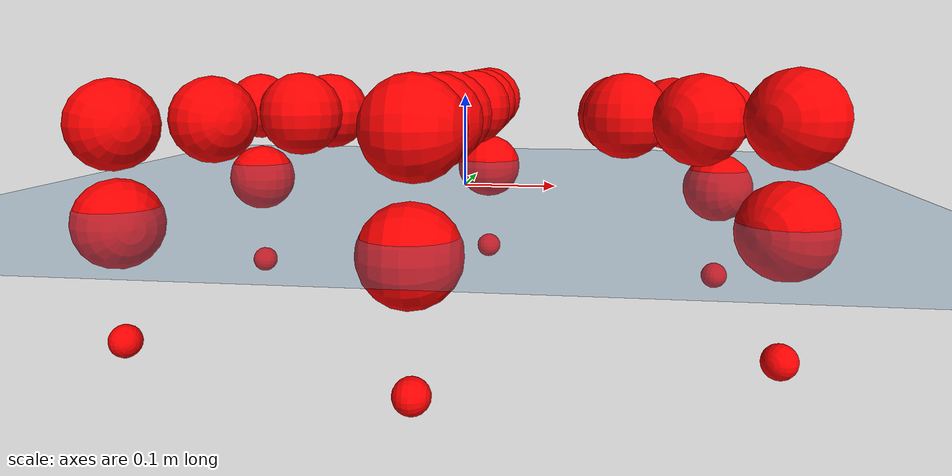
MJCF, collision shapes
<mujoco model="Golem">
  <compiler angle="radian" assetdir="assets" balanceinertia="true" inertiafromgeom="false"/>

  <option timestep="0.005" density="1.2" viscosity="2e-05"/>

  <size nkey="1"/>

  <visual>
    <quality shadowsize="8192"/>
    <map shadowclip="0.5"/>
  </visual>

  <default>
    <default class="/">
      <joint armature="0.01" damping="0.01" frictionloss="0.01"/>
      <geom contype="0" conaffinity="0" group="1" solref="-1000 -80"/>
      <site size="0.01 0.005 0.005" group="5"/>
      <general forcelimited="true" biastype="affine" gainprm="25" biasprm="0 -25 -0.5"/>
      <default class="visual">
        <geom type="mesh" group="2"/>
      </default>
      <default class="collision">
        <geom group="3"/>
      </default>
      <default class="foot">
        <geom size="0.01 0 0" condim="6" group="4" priority="1" solimp="0.015 1 0.01"/>
      </default>
      <default class="reward_collision_sphere">
        <geom group="5" rgba="1 0 0 1"/>
      </default>
    </default>
  </default>

  <asset>
    <texture type="skybox" colorspace="auto" name="//unnamed_texture_0" builtin="gradient" rgb1="0.95 0.95 0.95" rgb2="0.95 0.95 0.95" width="100" height="600"/>
    <texture type="2d" colorspace="auto" name="texplane" builtin="checker" rgb1="0.345 0.575 0.748" rgb2="0.345 0.575 0.748" markrgb="1 1 1" width="512" height="512"/>
    <material name="MatPlane" class="/" texture="texplane" texuniform="true" texrepeat="2 2" specular="0.9"/>
    <mesh name="body" class="/" file="body.stl" scale="0.001 0.001 0.001"/>
    <mesh name="coxa" class="/" file="coxa.stl" scale="0.001 0.001 0.001"/>
    <mesh name="femur" class="/" file="femur.stl" scale="0.001 0.001 0.001"/>
    <mesh name="tibia" class="/" file="tibia.stl" scale="0.001 0.001 0.001"/>
    <mesh name="tarsus" class="/" file="tarsus.stl" scale="0.001 0.001 0.001"/>
  </asset>

  <worldbody>
    <geom name="floor" class="/" size="100 100 0.125" type="plane" group="0" material="MatPlane"/>
    <light name="toplight_shadow" class="/" pos="0 0 5" dir="0.0990148 0.0990148 -0.990148" type="directional" ambient="0.04 0.04 0.04" diffuse="0.55 0.55 0.55" specular="0.12 0.12 0.12"/>
    <light name="toplight_fill" class="/" pos="0 0 5" dir="0.0990148 0.0990148 -0.990148" type="directional" castshadow="false" ambient="0.04 0.04 0.04" diffuse="0.3 0.3 0.3" specular="0.08 0.08 0.08"/>
    <body name="trunk" pos="9.365e-05 -0.00238572 0.000208137" quat="1 -0.000296317 -0.000352168 0.000802426">
      <inertial pos="0.00204709 -0.0019305 -0.00231292" quat="0.999937 0.0105246 0.00280835 -0.00254618" mass="5.03381" diaginertia="0.0146285 0.00650399 0.0356791"/>
      <joint name="//unnamed_joint_0" type="free"/>
      <geom name="//unnamed_geom_1" class="/" pos="0 0 0.0825573" quat="1 0 0 0" type="mesh" rgba="0.9 0.9 0.9 1" mesh="body"/>
      <site name="imu" class="/" pos="0.129278 -0.0108902 0.104955" size="0.0110081"/>
      <camera name="track" class="/" pos="0 -1.84589 0" quat="0.707107 0.707107 0 0" mode="trackcom"/>
      <camera name="ego_camera" class="/" pos="0.141637 0 0.128996" quat="-0.5 -0.5 0.5 0.5"/>
      <body name="coxa_RR" pos="-0.193691 -0.0775218 0.0814178" quat="0.384927 0.000517755 0.000663517 -0.922946">
        <inertial pos="-0.00127166 0.00226276 -0.000484896" quat="0.999969 0.00316687 0.00129155 0.00708207" mass="0.250101" diaginertia="0.0144347 0.00623491 0.0321926"/>
        <joint name="coxa_joint_RR" class="/" pos="0 0 0" axis="0.00150676 0.00556109 -0.999983" stiffness="0.00583238" range="-3.10611 3.09201" armature="0.012491" damping="0" frictionloss="0.0120961"/>
        <geom name="//unnamed_geom_2" class="/" type="mesh" rgba="0.2 0.2 0.2 1" mesh="coxa"/>
        <geom name="//unnamed_geom_3" class="reward_collision_sphere" size="0.0440322" pos="-0.0326854 0 0"/>
        <body name="femur_RR" pos="0.0648685 -0.00108632 -0.00249114" quat="0.49923 -0.499875 0.501632 0.49926">
          <inertial pos="0.000212429 -0.00452113 0.000774803" quat="1 2.75124e-05 -0.000241422 8.61986e-06" mass="0.280703" diaginertia="0.0159509 0.00681549 0.0369288"/>
          <joint name="femur_joint_RR" class="/" pos="0 0 0" axis="-0.00546924 0.00731547 -0.999958" range="-3.09493 3.09454" armature="0.00981379" damping="0.0210247" frictionloss="0.0112225"/>
          <geom name="//unnamed_geom_4" class="/" type="mesh" rgba="0.9 0.9 0.9 1" mesh="femur"/>
          <geom name="//unnamed_geom_5" class="reward_collision_sphere" size="0.0440322"/>
          <body name="tibia_RR" pos="0.000689337 -0.0986854 0.00138968" quat="2.50978e-05 1 -0.000149283 0.000214955">
            <inertial pos="0.00114122 -0.00372076 0.00240828" quat="1 -0.000760635 0.000431574 0.000318451" mass="0.268669" diaginertia="0.0153721 0.00679214 0.0354458"/>
            <joint name="tibia_joint_RR" class="/" pos="0 0 0" axis="0.0131639 0.00960848 0.999867" stiffness="0.0104719" range="-3.21426 3.18676" armature="0.0106682" damping="0.0252733" frictionloss="0.00803601"/>
            <geom name="//unnamed_geom_6" class="/" type="mesh" rgba="0.2 0.2 0.2 1" mesh="tibia"/>
            <geom name="//unnamed_geom_7" class="reward_collision_sphere" size="0.0440322"/>
            <body name="tarsus_RR" pos="0.0951963 -0.00138249 0.0041653" quat="1 0.000279316 -5.51893e-05 0.000256089">
              <inertial pos="0.0671267 -0.00212338 -0.000742322" quat="0.496016 0.503326 0.501636 0.49899" mass="0.276845" diaginertia="0.0163886 0.00673049 0.0345451"/>
              <joint name="tarsus_joint_RR" class="/" pos="0 0 0" axis="-0.000456853 -0.000561938 1" stiffness="0.00714983" range="-3.15216 3.10746" armature="0.00982307" damping="0" frictionloss="0.0121762"/>
              <geom name="//unnamed_geom_8" class="/" type="mesh" rgba="0.9 0.9 0.9 1" mesh="tarsus"/>
              <geom name="foot_1" class="foot" size="0.0119689" pos="0.122025 0 0" quat="0 -0.707107 0 0.707107"/>
              <geom name="//unnamed_geom_10" class="reward_collision_sphere" size="0.0440322"/>
              <geom name="//unnamed_geom_11" class="reward_collision_sphere" size="0.0165121" pos="0.117123 0 0"/>
              <site name="foot_1" class="foot" pos="0.122025 0 0" quat="0 -0.707107 0 0.707107" size="0.0110081"/>
            </body>
          </body>
        </body>
      </body>
      <body name="coxa_RM" pos="-0.00503754 -0.118869 0.0835453" quat="0.707642 0.000180422 0.000866853 -0.70657">
        <inertial pos="0.00162086 -0.000355481 0.00232949" quat="0.999716 0.00454365 0.0229955 0.00419334" mass="0.247087" diaginertia="0.0146023 0.00598232 0.0329471"/>
        <joint name="coxa_joint_RM" class="/" pos="0 0 0" axis="-0.0207747 -0.00546807 -0.999769" range="-3.14928 3.12197" armature="0.0096491" damping="0.0286561" frictionloss="0.010834"/>
        <geom name="//unnamed_geom_12" class="/" type="mesh" rgba="0.2 0.2 0.2 1" mesh="coxa"/>
        <geom name="//unnamed_geom_13" class="reward_collision_sphere" size="0.0440322" pos="-0.0326854 0 0"/>
        <body name="femur_RM" pos="0.0691386 0.00241261 -9.43748e-05" quat="0.50015 -0.499886 0.499236 0.500726">
          <inertial pos="-0.000109031 -0.000952832 -0.000789243" quat="0.99993 -0.0112359 0.00372711 0.000860318" mass="0.26653" diaginertia="0.015656 0.00661024 0.0348556"/>
          <joint name="femur_joint_RM" class="/" pos="0 0 0" axis="5.04613e-05 0.000276858 -1" stiffness="0.0125742" range="-3.17773 3.1602" armature="0.0105032" damping="0.0131608" frictionloss="0.00938167"/>
          <geom name="//unnamed_geom_14" class="/" type="mesh" rgba="0.9 0.9 0.9 1" mesh="femur"/>
          <geom name="//unnamed_geom_15" class="reward_collision_sphere" size="0.0440322"/>
          <body name="tibia_RM" pos="-0.000691939 -0.0994102 -0.00055125" quat="1.42851e-05 0.999999 -0.00108285 0.000312222">
            <inertial pos="0.0015035 0.000185919 -0.00142737" quat="0.999922 -0.00385033 -0.00628867 -0.0100594" mass="0.254011" diaginertia="0.0152379 0.00674426 0.0351575"/>
            <joint name="tibia_joint_RM" class="/" pos="0 0 0" axis="-0.00513806 0.0171539 0.99984" range="-3.10594 3.12734" armature="0.0131785" damping="0.0174061" frictionloss="0.00902839"/>
            <geom name="//unnamed_geom_16" class="/" type="mesh" rgba="0.2 0.2 0.2 1" mesh="tibia"/>
            <geom name="//unnamed_geom_17" class="reward_collision_sphere" size="0.0440322"/>
            <body name="tarsus_RM" pos="0.101402 0.00393794 0.0027255" quat="1 -0.000393826 -4.17242e-05 -1.91177e-05">
              <inertial pos="0.0651503 -0.00200249 -2.80578e-05" quat="0.500271 0.500251 0.500094 0.499384" mass="0.250759" diaginertia="0.0144831 0.00641142 0.0344523"/>
              <joint name="tarsus_joint_RM" class="/" pos="0 0 0" axis="-0.00396074 -0.00800947 0.99996" range="-3.09957 3.08865" armature="0.0102566" damping="0" frictionloss="0.0123936"/>
              <geom name="//unnamed_geom_18" class="/" type="mesh" rgba="0.9 0.9 0.9 1" mesh="tarsus"/>
              <geom name="foot_2" class="foot" size="0.0109608" pos="0.122025 0 0" quat="0 -0.707107 0 0.707107"/>
              <geom name="//unnamed_geom_20" class="reward_collision_sphere" size="0.0440322"/>
              <geom name="//unnamed_geom_21" class="reward_collision_sphere" size="0.0165121" pos="0.117123 0 0"/>
              <site name="foot_2" class="foot" pos="0.122025 0 0" quat="0 -0.707107 0 0.707107" size="0.0110081"/>
            </body>
          </body>
        </body>
      </body>
      <body name="coxa_RF" pos="0.196029 -0.0716554 0.0811256" quat="0.923707 4.43611e-05 -0.000458913 -0.383098">
        <inertial pos="0.00387946 0.00174871 0.00141632" quat="1 -6.28964e-05 4.72788e-05 7.76562e-06" mass="0.261837" diaginertia="0.0144117 0.00638653 0.0322342"/>
        <joint name="coxa_joint_RF" class="/" pos="0 0 0" axis="-0.0142116 -0.00359915 -0.999893" stiffness="0.012442" range="-3.10865 3.14023" armature="0.00978966" damping="0" frictionloss="0.00929615"/>
        <geom name="//unnamed_geom_22" class="/" type="mesh" rgba="0.2 0.2 0.2 1" mesh="coxa"/>
        <geom name="//unnamed_geom_23" class="reward_collision_sphere" size="0.0440322" pos="-0.0326854 0 0"/>
        <body name="femur_RF" pos="0.0611444 -8.55991e-05 0.000332113" quat="0.49985 -0.500571 0.500277 0.499301">
          <inertial pos="0.0023114 -0.000175869 -0.0023875" quat="0.999994 -0.00208541 0.00277409 0.000787976" mass="0.262907" diaginertia="0.0153177 0.00652603 0.035608"/>
          <joint name="femur_joint_RF" class="/" pos="0 0 0" axis="0.00524696 0.00978234 -0.999938" range="-3.11236 3.12303" armature="0.0116166" damping="0.0131092" frictionloss="0.0121316"/>
          <geom name="//unnamed_geom_24" class="/" type="mesh" rgba="0.9 0.9 0.9 1" mesh="femur"/>
          <geom name="//unnamed_geom_25" class="reward_collision_sphere" size="0.0440322"/>
          <body name="tibia_RF" pos="-0.0057938 -0.101964 -0.00211456" quat="-0.000183466 1 -3.51035e-05 0.000939635">
            <inertial pos="0.00057812 0.00333812 0.00173573" quat="0.99989 0.000958458 0.0119755 -0.00867464" mass="0.289801" diaginertia="0.0159423 0.0069135 0.0359602"/>
            <joint name="tibia_joint_RF" class="/" pos="0 0 0" axis="0.0129157 -0.00826124 0.999882" stiffness="0.0316443" range="-3.16162 3.15142" armature="0.0114427" damping="0.038564" frictionloss="0.0108599"/>
            <geom name="//unnamed_geom_26" class="/" type="mesh" rgba="0.2 0.2 0.2 1" mesh="tibia"/>
            <geom name="//unnamed_geom_27" class="reward_collision_sphere" size="0.0440322"/>
            <body name="tarsus_RF" pos="0.0967815 -0.00226048 0.00427763" quat="1 -2.16047e-06 1.22821e-06 -5.20341e-06">
              <inertial pos="0.0684031 0.00242597 -0.00204715" quat="0.493337 0.502892 0.506637 0.497028" mass="0.265995" diaginertia="0.0148522 0.00676719 0.0361585"/>
              <joint name="tarsus_joint_RF" class="/" pos="0 0 0" axis="-0.0227333 0.00781293 0.999711" stiffness="0.00578754" range="-3.185 3.08768" armature="0.00991815" damping="0.00925613" frictionloss="0.0113032"/>
              <geom name="//unnamed_geom_28" class="/" type="mesh" rgba="0.9 0.9 0.9 1" mesh="tarsus"/>
              <geom name="foot_3" class="foot" size="0.0115051" pos="0.122025 0 0" quat="0 -0.707107 0 0.707107"/>
              <geom name="//unnamed_geom_30" class="reward_collision_sphere" size="0.0440322"/>
              <geom name="//unnamed_geom_31" class="reward_collision_sphere" size="0.0165121" pos="0.117123 0 0"/>
              <site name="foot_3" class="foot" pos="0.122025 0 0" quat="0 -0.707107 0 0.707107" size="0.0110081"/>
            </body>
          </body>
        </body>
      </body>
      <body name="coxa_LR" pos="-0.193147 0.0787429 0.078924" quat="0.3831 -0.000613359 0.0009787 0.923706">
        <inertial pos="-0.000973727 -0.00201697 0.0025137" quat="0.999922 0.00012986 0.000178245 0.0125191" mass="0.271304" diaginertia="0.0153737 0.00694287 0.0366479"/>
        <joint name="coxa_joint_LR" class="/" pos="0 0 0" axis="0.005988 0.00187283 -0.99998" range="-3.16723 3.0745" armature="0.0115072" damping="0.0139831" frictionloss="0.0105115"/>
        <geom name="//unnamed_geom_32" class="/" type="mesh" rgba="0.2 0.2 0.2 1" mesh="coxa"/>
        <geom name="//unnamed_geom_33" class="reward_collision_sphere" size="0.0440322" pos="-0.0326854 0 0"/>
        <body name="femur_LR" pos="0.0666085 -0.000232777 -0.00350621" quat="0.499894 -0.50066 0.499446 0.5">
          <inertial pos="0.00185306 -0.000894712 0.00211065" quat="0.999802 0.0127994 -0.0112608 0.0102585" mass="0.25407" diaginertia="0.0146316 0.00629994 0.0347016"/>
          <joint name="femur_joint_LR" class="/" pos="0 0 0" axis="0.0283056 0.00626922 0.99958" range="-3.16344 3.17647" armature="0.00829465" damping="0.014271" frictionloss="0.0109952"/>
          <geom name="//unnamed_geom_34" class="/" type="mesh" rgba="0.9 0.9 0.9 1" mesh="femur"/>
          <geom name="//unnamed_geom_35" class="reward_collision_sphere" size="0.0440322"/>
          <body name="tibia_LR" pos="-0.0026328 -0.0993446 0.000853323" quat="-0.000451089 0.999999 -0.000806309 -0.000556429">
            <inertial pos="-0.000845044 0.00220576 -0.00155194" quat="0.999995 -0.00164367 0.000476396 -0.00280528" mass="0.264804" diaginertia="0.0163292 0.00702525 0.0360601"/>
            <joint name="tibia_joint_LR" class="/" pos="0 0 0" axis="-0.000147912 0.00389612 -0.999992" stiffness="0.000932611" range="-3.21983 3.11905" armature="0.0120311" damping="0.00823196" frictionloss="0.011101"/>
            <geom name="//unnamed_geom_36" class="/" type="mesh" rgba="0.2 0.2 0.2 1" mesh="tibia"/>
            <geom name="//unnamed_geom_37" class="reward_collision_sphere" size="0.0440322"/>
            <body name="tarsus_LR" pos="0.0990911 -0.000213598 -0.00186989" quat="1 0.000140855 5.09823e-05 -0.000149033">
              <inertial pos="0.0654819 0.00271911 0.00260894" quat="0.498492 0.500316 0.499999 0.501189" mass="0.270453" diaginertia="0.0149788 0.00608102 0.0350772"/>
              <joint name="tarsus_joint_LR" class="/" pos="0 0 0" axis="-0.00370595 0.00350492 -0.999987" stiffness="0.00206064" range="-3.19112 3.1423" armature="0.0109695" damping="0.0128019" frictionloss="0.0108527"/>
              <geom name="//unnamed_geom_38" class="/" type="mesh" rgba="0.9 0.9 0.9 1" mesh="tarsus"/>
              <geom name="foot_4" class="foot" size="0.0111555" pos="0.122025 0 0" quat="0.707107 0 -0.707107 0"/>
              <geom name="//unnamed_geom_40" class="reward_collision_sphere" size="0.0440322"/>
              <geom name="//unnamed_geom_41" class="reward_collision_sphere" size="0.0165121" pos="0.117123 0 0"/>
              <site name="foot_4" class="foot" pos="0.122025 0 0" quat="0.707107 0 -0.707107 0" size="0.0110081"/>
            </body>
          </body>
        </body>
      </body>
      <body name="coxa_LM" pos="-0.00183255 0.122629 0.0830443" quat="0.706959 -0.00124725 -0.000607583 0.707253">
        <inertial pos="0.000683811 0.000318512 0.00373409" quat="0.999924 -0.00274911 -0.0116203 0.00299468" mass="0.268752" diaginertia="0.0160796 0.00695062 0.0371483"/>
        <joint name="coxa_joint_LM" class="/" pos="0 0 0" axis="0.0001992 -0.00320819 -0.999995" stiffness="0.0099834" range="-3.18955 3.12751" armature="0.0122901" damping="0.0201459" frictionloss="0.0108026"/>
        <geom name="//unnamed_geom_42" class="/" type="mesh" rgba="0.2 0.2 0.2 1" mesh="coxa"/>
        <geom name="//unnamed_geom_43" class="reward_collision_sphere" size="0.0440322" pos="-0.0326854 0 0"/>
        <body name="femur_LM" pos="0.0633726 0.000458185 0.00164771" quat="0.499422 -0.500623 0.499851 0.500103">
          <inertial pos="0.00104572 -0.00107804 0.00507964" quat="0.999982 -0.00401998 -0.00410753 -0.00173546" mass="0.270305" diaginertia="0.0151388 0.00676118 0.0353139"/>
          <joint name="femur_joint_LM" class="/" pos="0 0 0" axis="0.000657781 0.00217213 0.999997" stiffness="0.00699776" range="-3.09014 3.23345" armature="0.0109222" damping="0.0277891" frictionloss="0.0122227"/>
          <geom name="//unnamed_geom_44" class="/" type="mesh" rgba="0.9 0.9 0.9 1" mesh="femur"/>
          <geom name="//unnamed_geom_45" class="reward_collision_sphere" size="0.0440322"/>
          <body name="tibia_LM" pos="-0.00152365 -0.0983981 0.000581322" quat="0.000235949 1 0.000580852 9.69319e-05">
            <inertial pos="0.00147689 -9.71233e-05 0.000828367" quat="0.999927 -0.0036096 0.00637082 0.00956306" mass="0.286984" diaginertia="0.0164727 0.00722598 0.0385406"/>
            <joint name="tibia_joint_LM" class="/" pos="0 0 0" axis="0.00912028 -0.00568911 -0.999942" stiffness="0.0115572" range="-3.17854 3.12088" armature="0.00782362" damping="0.0331275" frictionloss="0.00999364"/>
            <geom name="//unnamed_geom_46" class="/" type="mesh" rgba="0.2 0.2 0.2 1" mesh="tibia"/>
            <geom name="//unnamed_geom_47" class="reward_collision_sphere" size="0.0440322"/>
            <body name="tarsus_LM" pos="0.0967853 -0.0008756 -0.000576747" quat="1 9.17191e-05 -8.70735e-05 0.000150497">
              <inertial pos="0.0638664 0.00158667 -0.000406918" quat="0.499096 0.496617 0.502154 0.502112" mass="0.284903" diaginertia="0.0158788 0.00765309 0.0371415"/>
              <joint name="tarsus_joint_LM" class="/" pos="0 0 0" axis="-0.00102936 -0.00209799 -0.999997" range="-3.14853 3.14467" armature="0.00972868" damping="0" frictionloss="0.0084814"/>
              <geom name="//unnamed_geom_48" class="/" type="mesh" rgba="0.9 0.9 0.9 1" mesh="tarsus"/>
              <geom name="foot_5" class="foot" size="0.0112353" pos="0.122025 0 0" quat="0.707107 0 -0.707107 0"/>
              <geom name="//unnamed_geom_50" class="reward_collision_sphere" size="0.0440322"/>
              <geom name="//unnamed_geom_51" class="reward_collision_sphere" size="0.0165121" pos="0.117123 0 0"/>
              <site name="foot_5" class="foot" pos="0.122025 0 0" quat="0.707107 0 -0.707107 0" size="0.0110081"/>
            </body>
          </body>
        </body>
      </body>
      <body name="coxa_LF" pos="0.190731 0.0801201 0.0772017" quat="0.923621 0.000272143 -0.000183173 0.383307">
        <inertial pos="0.00371908 0.00526226 0.000777102" quat="0.999931 -0.00645454 -0.00334553 0.00926611" mass="0.272764" diaginertia="0.0156571 0.00726803 0.0358239"/>
        <joint name="coxa_joint_LF" class="/" pos="0 0 0" axis="-0.00295301 0.0185964 -0.999823" range="-3.15013 3.1447" armature="0.0123138" damping="0.0228065" frictionloss="0.011716"/>
        <geom name="//unnamed_geom_52" class="/" type="mesh" rgba="0.2 0.2 0.2 1" mesh="coxa"/>
        <geom name="//unnamed_geom_53" class="reward_collision_sphere" size="0.0440322" pos="-0.0326854 0 0"/>
        <body name="femur_LF" pos="0.0628067 -0.00306768 -0.00291359" quat="0.500315 -0.49947 0.500264 0.49995">
          <inertial pos="-0.000689874 -0.000460474 0.00223585" quat="0.999999 -0.0010921 0.0011549 -0.000225902" mass="0.283742" diaginertia="0.0166948 0.00695735 0.0368209"/>
          <joint name="femur_joint_LF" class="/" pos="0 0 0" axis="-0.0125111 -0.0106248 0.999865" stiffness="0.00291144" range="-3.16403 3.1085" armature="0.0124343" damping="0.00597728" frictionloss="0.0110272"/>
          <geom name="//unnamed_geom_54" class="/" type="mesh" rgba="0.9 0.9 0.9 1" mesh="femur"/>
          <geom name="//unnamed_geom_55" class="reward_collision_sphere" size="0.0440322"/>
          <body name="tibia_LF" pos="0.00452694 -0.10068 0.00337852" quat="-0.000240095 1 -0.000333077 -2.482e-05">
            <inertial pos="0.000121904 -0.00303693 -0.000853378" quat="0.999977 0.00264318 0.0022038 -0.00586233" mass="0.258456" diaginertia="0.0149779 0.00644811 0.0344823"/>
            <joint name="tibia_joint_LF" class="/" pos="0 0 0" axis="0.00183344 0.000730112 -0.999998" stiffness="0.0290226" range="-3.11288 3.17125" armature="0.0099321" damping="0.0254066" frictionloss="0.012343"/>
            <geom name="//unnamed_geom_56" class="/" type="mesh" rgba="0.2 0.2 0.2 1" mesh="tibia"/>
            <geom name="//unnamed_geom_57" class="reward_collision_sphere" size="0.0440322"/>
            <body name="tarsus_LF" pos="0.094754 -0.00143389 0.00123389" quat="1 -0.000286841 1.00713e-05 6.29753e-06">
              <inertial pos="0.0707426 0.00310196 -0.00260255" quat="0.486161 0.48575 0.515309 0.512006" mass="0.263197" diaginertia="0.0157371 0.00680095 0.035146"/>
              <joint name="tarsus_joint_LF" class="/" pos="0 0 0" axis="0.01931 0.0223539 -0.999564" stiffness="0.0163186" range="-3.11744 3.15607" armature="0.01096" damping="0.0188581" frictionloss="0.0102836"/>
              <geom name="//unnamed_geom_58" class="/" type="mesh" rgba="0.9 0.9 0.9 1" mesh="tarsus"/>
              <geom name="foot_6" class="foot" size="0.0105322" pos="0.122025 0 0" quat="0.707107 0 -0.707107 0"/>
              <geom name="//unnamed_geom_60" class="reward_collision_sphere" size="0.0440322"/>
              <geom name="//unnamed_geom_61" class="reward_collision_sphere" size="0.0165121" pos="0.117123 0 0"/>
              <site name="foot_6" class="foot" pos="0.122025 0 0" quat="0.707107 0 -0.707107 0" size="0.0110081"/>
            </body>
          </body>
        </body>
      </body>
    </body>
  </worldbody>

  <contact>
    <pair class="/" geom1="floor" geom2="foot_1" name="//unnamed_contact_0"/>
    <pair class="/" geom1="floor" geom2="foot_2" name="//unnamed_contact_1"/>
    <pair class="/" geom1="floor" geom2="foot_3" name="//unnamed_contact_2"/>
    <pair class="/" geom1="floor" geom2="foot_4" name="//unnamed_contact_3"/>
    <pair class="/" geom1="floor" geom2="foot_5" name="//unnamed_contact_4"/>
    <pair class="/" geom1="floor" geom2="foot_6" name="//unnamed_contact_5"/>
  </contact>

  <actuator>
    <general name="coxa_joint_RR" class="/" joint="coxa_joint_RR" forcerange="-8.04821 8.04821" gainprm="26.8573" biasprm="0 -26.8573 -0.581091"/>
    <general name="femur_joint_RR" class="/" joint="femur_joint_RR" forcerange="-8.77348 8.77348" gainprm="26.8573" biasprm="0 -26.8573 -0.581091"/>
    <general name="tibia_joint_RR" class="/" joint="tibia_joint_RR" forcerange="-8.28389 8.28389" gainprm="26.8573" biasprm="0 -26.8573 -0.581091"/>
    <general name="tarsus_joint_RR" class="/" joint="tarsus_joint_RR" forcerange="-7.48049 7.48049" gainprm="26.8573" biasprm="0 -26.8573 -0.581091"/>
    <general name="coxa_joint_RM" class="/" joint="coxa_joint_RM" forcerange="-7.48119 7.48119" gainprm="26.8573" biasprm="0 -26.8573 -0.581091"/>
    <general name="femur_joint_RM" class="/" joint="femur_joint_RM" forcerange="-7.45244 7.45244" gainprm="26.8573" biasprm="0 -26.8573 -0.581091"/>
    <general name="tibia_joint_RM" class="/" joint="tibia_joint_RM" forcerange="-8.7487 8.7487" gainprm="26.8573" biasprm="0 -26.8573 -0.581091"/>
    <general name="tarsus_joint_RM" class="/" joint="tarsus_joint_RM" forcerange="-8.52388 8.52388" gainprm="26.8573" biasprm="0 -26.8573 -0.581091"/>
    <general name="coxa_joint_RF" class="/" joint="coxa_joint_RF" forcerange="-8.58329 8.58329" gainprm="26.8573" biasprm="0 -26.8573 -0.581091"/>
    <general name="femur_joint_RF" class="/" joint="femur_joint_RF" forcerange="-8.70578 8.70578" gainprm="26.8573" biasprm="0 -26.8573 -0.581091"/>
    <general name="tibia_joint_RF" class="/" joint="tibia_joint_RF" forcerange="-8.66909 8.66909" gainprm="26.8573" biasprm="0 -26.8573 -0.581091"/>
    <general name="tarsus_joint_RF" class="/" joint="tarsus_joint_RF" forcerange="-8.75162 8.75162" gainprm="26.8573" biasprm="0 -26.8573 -0.581091"/>
    <general name="coxa_joint_LR" class="/" joint="coxa_joint_LR" forcerange="-7.81746 7.81746" gainprm="26.8573" biasprm="0 -26.8573 -0.581091"/>
    <general name="femur_joint_LR" class="/" joint="femur_joint_LR" forcerange="-7.93966 7.93966" gainprm="26.8573" biasprm="0 -26.8573 -0.581091"/>
    <general name="tibia_joint_LR" class="/" joint="tibia_joint_LR" forcerange="-7.50609 7.50609" gainprm="26.8573" biasprm="0 -26.8573 -0.581091"/>
    <general name="tarsus_joint_LR" class="/" joint="tarsus_joint_LR" forcerange="-8.26942 8.26942" gainprm="26.8573" biasprm="0 -26.8573 -0.581091"/>
    <general name="coxa_joint_LM" class="/" joint="coxa_joint_LM" forcerange="-7.28076 7.28076" gainprm="26.8573" biasprm="0 -26.8573 -0.581091"/>
    <general name="femur_joint_LM" class="/" joint="femur_joint_LM" forcerange="-7.29037 7.29037" gainprm="26.8573" biasprm="0 -26.8573 -0.581091"/>
    <general name="tibia_joint_LM" class="/" joint="tibia_joint_LM" forcerange="-8.13057 8.13057" gainprm="26.8573" biasprm="0 -26.8573 -0.581091"/>
    <general name="tarsus_joint_LM" class="/" joint="tarsus_joint_LM" forcerange="-8.56166 8.56166" gainprm="26.8573" biasprm="0 -26.8573 -0.581091"/>
    <general name="coxa_joint_LF" class="/" joint="coxa_joint_LF" forcerange="-7.77816 7.77816" gainprm="26.8573" biasprm="0 -26.8573 -0.581091"/>
    <general name="femur_joint_LF" class="/" joint="femur_joint_LF" forcerange="-7.97091 7.97091" gainprm="26.8573" biasprm="0 -26.8573 -0.581091"/>
    <general name="tibia_joint_LF" class="/" joint="tibia_joint_LF" forcerange="-7.7818 7.7818" gainprm="26.8573" biasprm="0 -26.8573 -0.581091"/>
    <general name="tarsus_joint_LF" class="/" joint="tarsus_joint_LF" forcerange="-7.81776 7.81776" gainprm="26.8573" biasprm="0 -26.8573 -0.581091"/>
  </actuator>

  <sensor>
    <gyro site="imu" name="imu_angular_velocity"/>
    <velocimeter site="imu" name="imu_linear_velocity"/>
    <framelinvel objtype="site" objname="foot_1" name="foot_1_global_linear_velocity"/>
    <framelinvel objtype="site" objname="foot_2" name="foot_2_global_linear_velocity"/>
    <framelinvel objtype="site" objname="foot_3" name="foot_3_global_linear_velocity"/>
    <framelinvel objtype="site" objname="foot_4" name="foot_4_global_linear_velocity"/>
    <framelinvel objtype="site" objname="foot_5" name="foot_5_global_linear_velocity"/>
    <framelinvel objtype="site" objname="foot_6" name="foot_6_global_linear_velocity"/>
  </sensor>

  <keyframe>
    <key name="home" qpos="0 0 0.1457 1 0 0 0 0 0 0 0 0 0 0 0 0 0 0 0 0 0 0 0 0 0 0 0 0 0 0 0"/>
  </keyframe>
</mujoco>
